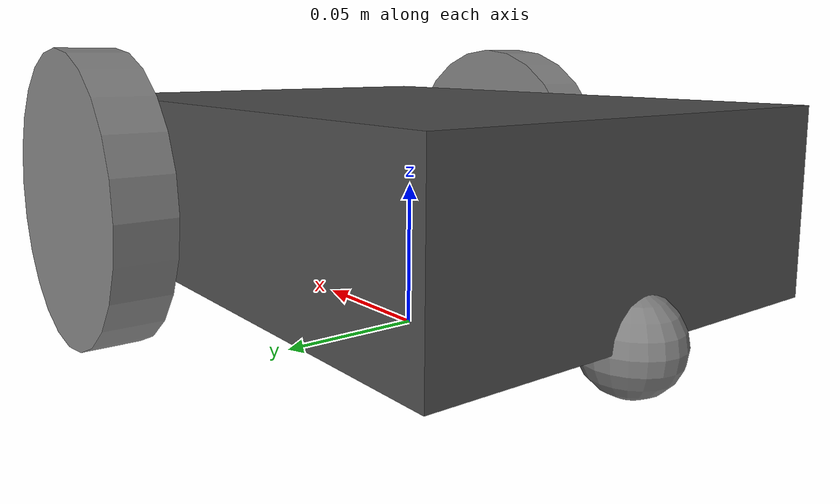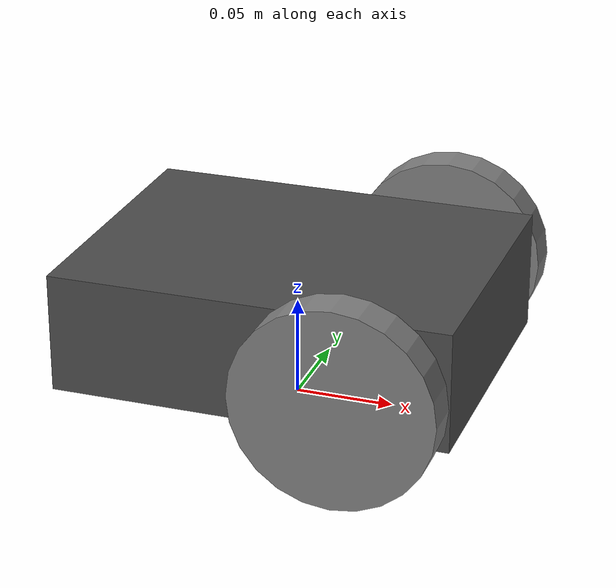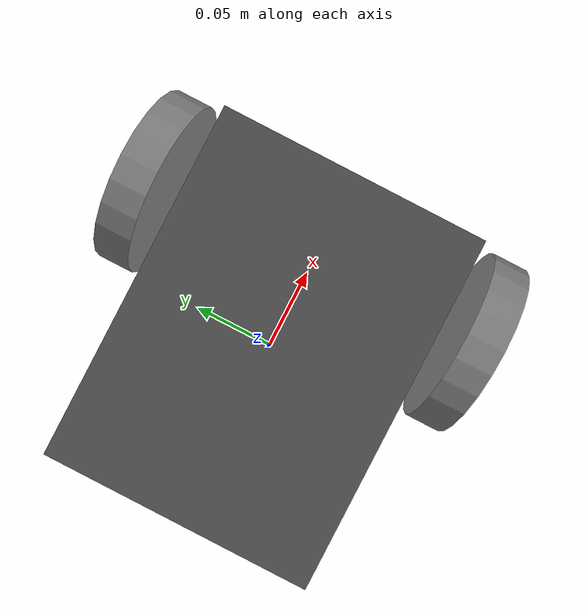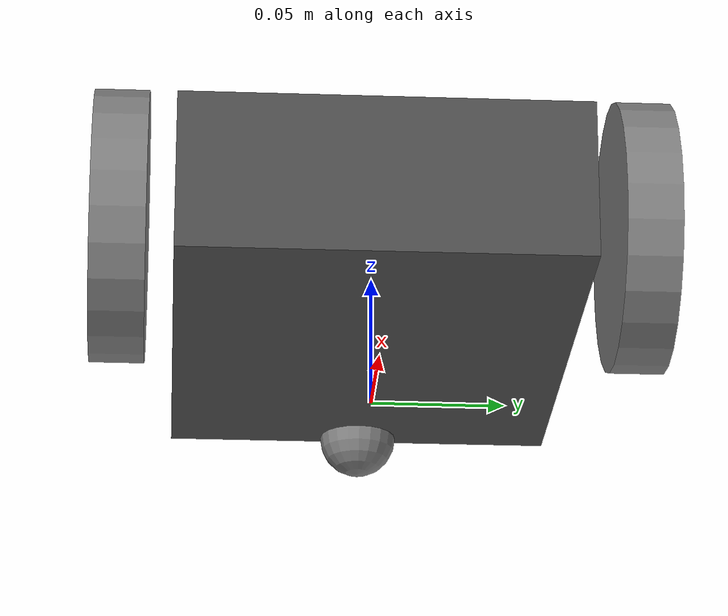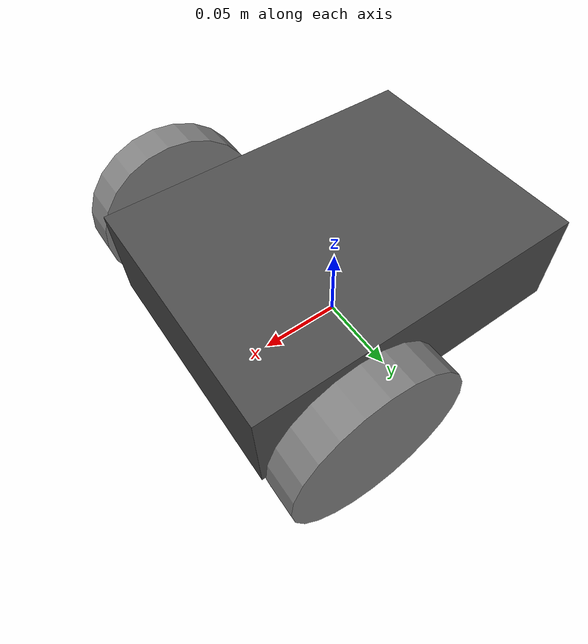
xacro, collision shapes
<?xml version="1.0"?>
<robot name="puzzlebot" xmlns:xacro="http://ros.org/wiki/xacro">

  <!-- Arguments -->
  <xacro:arg name="is_ignition" default="true"/>
  <xacro:arg name="is_sim" default="true"/>

  <!-- Include Gazebo plugins -->
  <xacro:include filename="$(find description)/urdf/puzzlebot_gazebo.xacro" />

  <!-- Include ros2_control -->
  <xacro:include filename="$(find description)/urdf/puzzlebot_ros2_control.xacro" />

  <!-- ==================== PROPERTIES ==================== -->
  <xacro:property name="wheel_radius" value="0.05"/>
  <xacro:property name="wheel_separation" value="0.19"/>
  <xacro:property name="base_mass" value="1.0"/>
  <xacro:property name="wheel_mass" value="0.1"/>
  <xacro:property name="caster_mass" value="0.01"/>

  <!-- LiDAR mounting yaw — physical RPLidar A1 on the MCR2 ships rotated 180°
       (motor/cable facing rear); Gazebo's gpu_lidar emits ray 0 along +X. -->
  <xacro:property name="lidar_yaw" value="${0.0 if '$(arg is_sim)' == 'true' else 3.141592653589793}"/>

  <!-- Inertia macros -->
  <xacro:macro name="cylinder_inertia" params="m r h">
    <inertial>
      <mass value="${m}"/>
      <inertia ixx="${m*(3*r*r+h*h)/12}" ixy="0.0" ixz="0.0"
               iyy="${m*(3*r*r+h*h)/12}" iyz="0.0"
               izz="${m*r*r/2}"/>
    </inertial>
  </xacro:macro>

  <xacro:macro name="box_inertia" params="m x y z">
    <inertial>
      <mass value="${m}"/>
      <inertia ixx="${m*(y*y+z*z)/12}" ixy="0.0" ixz="0.0"
               iyy="${m*(x*x+z*z)/12}" iyz="0.0"
               izz="${m*(x*x+y*y)/12}"/>
    </inertial>
  </xacro:macro>

  <xacro:macro name="sphere_inertia" params="m r">
    <inertial>
      <mass value="${m}"/>
      <inertia ixx="${2*m*r*r/5}" ixy="0.0" ixz="0.0"
               iyy="${2*m*r*r/5}" iyz="0.0"
               izz="${2*m*r*r/5}"/>
    </inertial>
  </xacro:macro>

  <!-- ==================== LINKS ==================== -->

  <!-- base_footprint: ground-level reference frame -->
  <link name="base_footprint"/>

  <!-- base_link: robot centre, raised above base_footprint -->
  <link name="base_link">
    <xacro:box_inertia m="${base_mass}" x="0.2" y="0.15" z="0.06"/>
    <visual>
      <origin xyz="0.050 0 0.0965" rpy="1.5708 0 3.1416"/>
      <geometry>
        <mesh filename="package://description/meshes/Puzzlebot_Jetson_Lidar_Edition_Base.stl"/>
      </geometry>
      <material name="dark_grey">
        <color rgba="0.3 0.3 0.3 1.0"/>
      </material>
    </visual>
    <collision>
      <geometry>
        <box size="0.2 0.15 0.06"/>
      </geometry>
    </collision>
  </link>

  <!-- Right wheel -->
  <link name="wheel_right_link">
    <xacro:cylinder_inertia m="${wheel_mass}" r="${wheel_radius}" h="0.02"/>
    <visual>
      <origin xyz="0.055 -0.0048 0" rpy="1.57 0 0"/>
      <geometry>
        <mesh filename="package://description/meshes/MCR2_wheel.stl"/>
      </geometry>
      <material name="grey">
        <color rgba="0.5 0.5 0.5 1.0"/>
      </material>
    </visual>
    <collision>
      <origin xyz="0 0 0" rpy="1.5708 0 0"/>
      <geometry>
        <cylinder radius="${wheel_radius}" length="0.02"/>
      </geometry>
    </collision>
  </link>

  <!-- Left wheel -->
  <link name="wheel_left_link">
    <xacro:cylinder_inertia m="${wheel_mass}" r="${wheel_radius}" h="0.02"/>
    <visual>
      <origin xyz="0.055 0.0048 0" rpy="-1.57 0 0"/>
      <geometry>
        <mesh filename="package://description/meshes/MCR2_wheel.stl"/>
      </geometry>
      <material name="grey">
        <color rgba="0.5 0.5 0.5 1.0"/>
      </material>
    </visual>
    <collision>
      <origin xyz="0 0 0" rpy="1.5708 0 0"/>
      <geometry>
        <cylinder radius="${wheel_radius}" length="0.02"/>
      </geometry>
    </collision>
  </link>

  <!-- Caster wheel -->
  <link name="caster_link">
    <xacro:sphere_inertia m="${caster_mass}" r="0.015"/>
    <visual>
      <origin xyz="0 0 -0.015" rpy="0 0 0"/>
      <geometry>
        <mesh filename="package://description/meshes/MCR2_caster_wheel.stl"/>
      </geometry>
      <material name="grey">
        <color rgba="0.5 0.5 0.5 1.0"/>
      </material>
    </visual>
    <collision>
      <geometry>
        <sphere radius="0.015"/>
      </geometry>
    </collision>
  </link>

  <!-- Lidar link (visual already part of MCR2 base mesh) -->
  <link name="lidar_link">
    <inertial>
      <mass value="0.05"/>
      <inertia ixx="1e-6" ixy="0" ixz="0" iyy="1e-6" iyz="0" izz="1e-6"/>
    </inertial>
  </link>

  <!-- Camera link (visual already part of MCR2 base mesh) -->
  <link name="camera_link">
    <inertial>
      <mass value="0.02"/>
      <inertia ixx="1e-6" ixy="0" ixz="0" iyy="1e-6" iyz="0" izz="1e-6"/>
    </inertial>
  </link>

  <!-- ==================== JOINTS ==================== -->

  <!-- base_footprint -> base_link -->
  <joint name="base_joint" type="fixed">
    <parent link="base_footprint"/>
    <child link="base_link"/>
    <origin xyz="0.0 0.0 0.05" rpy="0.0 0.0 0.0"/>
  </joint>

  <!-- base_link -> wheel_right_link -->
  <joint name="wheel_right_joint" type="continuous">
    <parent link="base_link"/>
    <child link="wheel_right_link"/>
    <origin xyz="0.052 -0.095 -0.0025" rpy="0.0 0.0 0.0"/>
    <axis xyz="0 1 0"/>
  </joint>

  <!-- base_link -> wheel_left_link -->
  <joint name="wheel_left_joint" type="continuous">
    <parent link="base_link"/>
    <child link="wheel_left_link"/>
    <origin xyz="0.052 0.095 -0.0025" rpy="0.0 0.0 0.0"/>
    <axis xyz="0 1 0"/>
  </joint>

  <!-- base_link -> caster_link -->
  <joint name="caster_joint" type="fixed">
    <parent link="base_link"/>
    <child link="caster_link"/>
    <origin xyz="-0.095 0 -0.0307" rpy="0 0 0"/>
  </joint>

  <!-- base_link -> lidar_link -->
  <joint name="lidar_joint" type="fixed">
    <parent link="base_link"/>
    <child link="lidar_link"/>
    <origin xyz="0.05 0 0.110" rpy="0 0 ${lidar_yaw}"/>
  </joint>

  <!-- base_link -> camera_link -->
  <joint name="camera_joint" type="fixed">
    <parent link="base_link"/>
    <child link="camera_link"/>
    <origin xyz="0.112 0 0.065" rpy="0 0 0"/>
  </joint>

  <!-- Materials -->
  <material name="dark_grey">
    <color rgba="0.3 0.3 0.3 1.0"/>
  </material>
  <material name="grey">
    <color rgba="0.5 0.5 0.5 1.0"/>
  </material>
  <material name="black">
    <color rgba="0.1 0.1 0.1 1.0"/>
  </material>

</robot>
